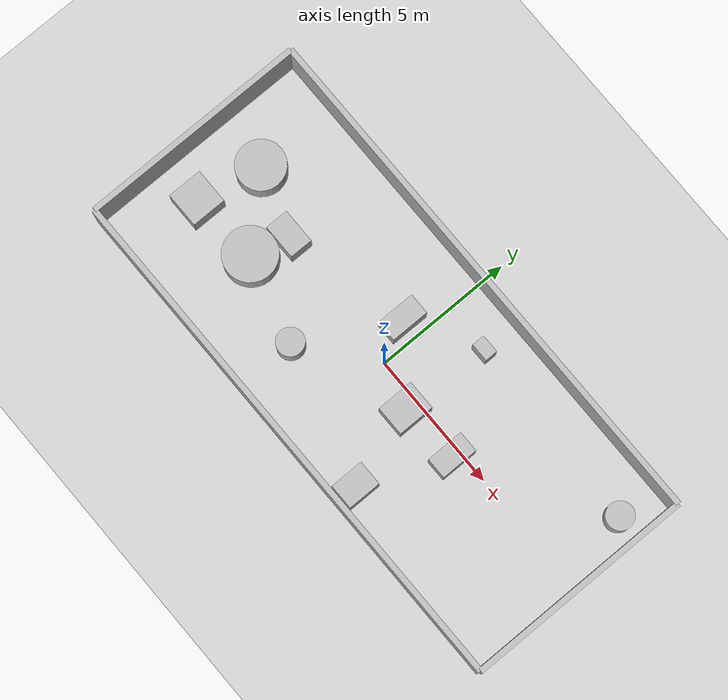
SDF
<?xml version="1.0"?>
<sdf version="1.6">
  <world name="env_95">

    <include><uri>model://ground_plane</uri></include>
    <include><uri>model://sun</uri></include>

    <!-- WALLS -->
    <model name="wall_north"><static>true</static><pose>0 4.094036508894366 1 0 0 0</pose>
      <link name="link"><collision name="collision">
        <geometry><box><size>19.173957015106353 0.2 2</size></box></geometry>
      </collision><visual name="visual">
        <geometry><box><size>19.173957015106353 0.2 2</size></box></geometry>
      </visual></link>
    </model>

    <model name="wall_south"><static>true</static><pose>0 -4.094036508894366 1 0 0 0</pose>
      <link name="link"><collision name="collision">
        <geometry><box><size>19.173957015106353 0.2 2</size></box></geometry>
      </collision><visual name="visual">
        <geometry><box><size>19.173957015106353 0.2 2</size></box></geometry>
      </visual></link>
    </model>

    <model name="wall_east"><static>true</static><pose>9.586978507553177 0 1 0 0 1.57</pose>
      <link name="link"><collision name="collision">
        <geometry><box><size>8.188073017788732 0.2 2</size></box></geometry>
      </collision><visual name="visual">
        <geometry><box><size>8.188073017788732 0.2 2</size></box></geometry>
      </visual></link>
    </model>

    <model name="wall_west"><static>true</static><pose>-9.586978507553177 0 1 0 0 1.57</pose>
      <link name="link"><collision name="collision">
        <geometry><box><size>8.188073017788732 0.2 2</size></box></geometry>
      </collision><visual name="visual">
        <geometry><box><size>8.188073017788732 0.2 2</size></box></geometry>
      </visual></link>
    </model>

    <!-- SENSOR -->

    <model name="lidar_sensor">
      <static>true</static>
      <pose>4.172252644116114 -1.9155759038180304 0.4 0 0 0</pose>
      <link name="link">
        <sensor name="lidar" type="ray">
          <pose>0 0 0 0 0 0</pose>
          <visualize>true</visualize>
          <always_on>true</always_on>
          <update_rate>10</update_rate>
          <ray>
            <scan><horizontal>
              <samples>180</samples>
              <resolution>1</resolution>
              <min_angle>-3.14159</min_angle>
              <max_angle>3.14159</max_angle>
            </horizontal></scan>
            <range><min>0.15</min><max>20.0</max><resolution>0.01</resolution></range>
          </ray>
          <plugin name="lidar_plugin" filename="liblidar_plugin.so"/>
        </sensor>
      </link>
    </model>

    <!-- OBSTACLES -->

    <model name="obstacle_0">
      <static>true</static>
      <pose>-2.3958038713338965 -1.9470052070298354 0.5 0 0 0</pose>
      <link name="link">
        <collision name="collision">
          <geometry><cylinder><radius>0.49</radius><length>1.0</length></cylinder></geometry>
        </collision>
        <visual name="visual">
          <geometry><cylinder><radius>0.49</radius><length>1.0</length></cylinder></geometry>
        </visual>
      </link>
    </model>

    <model name="obstacle_1">
      <static>true</static>
      <pose>2.503555467890692 -3.3023863645048683 0.5 0 0 0</pose>
      <link name="link">
        <collision name="collision">
          <geometry><box><size>0.92 1.22 1.0</size></box></geometry>
        </collision>
        <visual name="visual">
          <geometry><box><size>0.92 1.22 1.0</size></box></geometry>
        </visual>
      </link>
    </model>

    <model name="obstacle_2">
      <static>true</static>
      <pose>1.6351007204183041 -0.48073821817537743 0.5 0 0 0</pose>
      <link name="link">
        <collision name="collision">
          <geometry><box><size>1.08 1.33 1.0</size></box></geometry>
        </collision>
        <visual name="visual">
          <geometry><box><size>1.08 1.33 1.0</size></box></geometry>
        </visual>
      </link>
    </model>

    <model name="obstacle_3">
      <static>true</static>
      <pose>3.75593775572146 -0.3097937883441686 0.5 0 0 0</pose>
      <link name="link">
        <collision name="collision">
          <geometry><box><size>0.77 1.36 1.0</size></box></geometry>
        </collision>
        <visual name="visual">
          <geometry><box><size>0.77 1.36 1.0</size></box></geometry>
        </visual>
      </link>
    </model>

    <model name="obstacle_4">
      <static>true</static>
      <pose>-7.478065769682493 1.0290423088014231 0.5 0 0 0</pose>
      <link name="link">
        <collision name="collision">
          <geometry><cylinder><radius>0.87</radius><length>1.0</length></cylinder></geometry>
        </collision>
        <visual name="visual">
          <geometry><cylinder><radius>0.87</radius><length>1.0</length></cylinder></geometry>
        </visual>
      </link>
    </model>

    <model name="obstacle_5">
      <static>true</static>
      <pose>-0.6784486529295037 1.339156759122658 0.5 0 0 0</pose>
      <link name="link">
        <collision name="collision">
          <geometry><box><size>0.77 1.4 1.0</size></box></geometry>
        </collision>
        <visual name="visual">
          <geometry><box><size>0.77 1.4 1.0</size></box></geometry>
        </visual>
      </link>
    </model>

    <model name="obstacle_6">
      <static>true</static>
      <pose>1.7880257669113693 2.7219550350491346 0.5 0 0 0</pose>
      <link name="link">
        <collision name="collision">
          <geometry><box><size>0.67 0.46 1.0</size></box></geometry>
        </collision>
        <visual name="visual">
          <geometry><box><size>0.67 0.46 1.0</size></box></geometry>
        </visual>
      </link>
    </model>

    <model name="obstacle_7">
      <static>true</static>
      <pose>-5.441752851331339 -1.1070843559807138 0.5 0 0 0</pose>
      <link name="link">
        <collision name="collision">
          <geometry><cylinder><radius>0.95</radius><length>1.0</length></cylinder></geometry>
        </collision>
        <visual name="visual">
          <geometry><cylinder><radius>0.95</radius><length>1.0</length></cylinder></geometry>
        </visual>
      </link>
    </model>

    <model name="obstacle_8">
      <static>true</static>
      <pose>-7.971896539390844 -1.2627465705191905 0.5 0 0 0</pose>
      <link name="link">
        <collision name="collision">
          <geometry><box><size>1.27 1.26 1.0</size></box></geometry>
        </collision>
        <visual name="visual">
          <geometry><box><size>1.27 1.26 1.0</size></box></geometry>
        </visual>
      </link>
    </model>

    <model name="obstacle_9">
      <static>true</static>
      <pose>8.696933227822786 2.5480411760571213 0.5 0 0 0</pose>
      <link name="link">
        <collision name="collision">
          <geometry><cylinder><radius>0.49</radius><length>1.0</length></cylinder></geometry>
        </collision>
        <visual name="visual">
          <geometry><cylinder><radius>0.49</radius><length>1.0</length></cylinder></geometry>
        </visual>
      </link>
    </model>

    <model name="obstacle_10">
      <static>true</static>
      <pose>-5.1409932889272305 0.2730676176309732 0.5 0 0 0</pose>
      <link name="link">
        <collision name="collision">
          <geometry><box><size>1.27 0.84 1.0</size></box></geometry>
        </collision>
        <visual name="visual">
          <geometry><box><size>1.27 0.84 1.0</size></box></geometry>
        </visual>
      </link>
    </model>

  </world>
</sdf>
